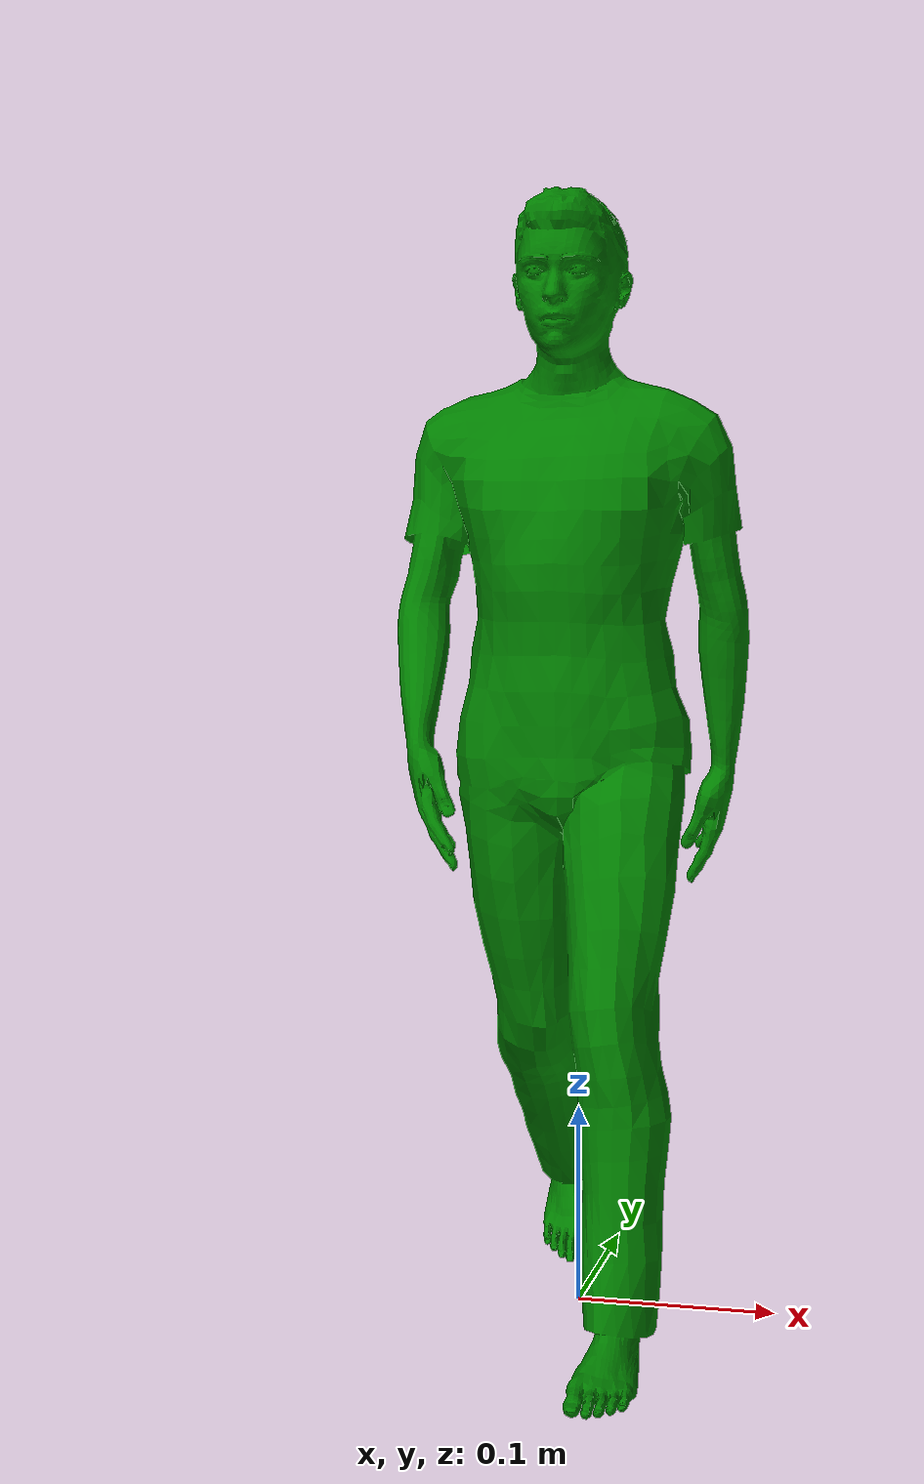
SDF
<?xml version='1.0'?>
<sdf version='1.6'>
  <model name='person_walking'>
    <link name='link'>
      <inertial>
        <pose frame=''>0 0 0.95 0 -0 0</pose>
        <mass>80</mass>
        <inertia>
          <ixx>27.82</ixx>
          <ixy>0</ixy>
          <ixz>0</ixz>
          <iyy>24.88</iyy>
          <iyz>0</iyz>
          <izz>4.57</izz>
        </inertia>
      </inertial>
      <self_collide>0</self_collide>
      <enable_wind>0</enable_wind>
      <kinematic>0</kinematic>
      <pose frame=''>0 0 0 0 -0 0</pose>
      <gravity>1</gravity>
      <visual name='visual'>
        <pose frame=''>0 0 -0.02 0 -0 0</pose>
        <geometry>
          <mesh>
            <uri>model://person_walking/meshes/walking.dae</uri>
            <scale>0.3 0.3 0.3</scale>
          </mesh>
        </geometry>
        <transparency>0</transparency>
        <cast_shadows>1</cast_shadows>
        <material>
          <shader type='vertex'>
            <normal_map>__default__</normal_map>
          </shader>
          <script>
            <name>ModelPreview_4::link::visual_MATERIAL_</name>
            <uri>__default__</uri>
          </script>
          <ambient>0.4 0.4 0.4 1</ambient>
          <diffuse>0 0.5 0 1</diffuse>
          <specular>0 0.5 0 1</specular>
          <emissive>0 0.5 0 1</emissive>
        </material>
      </visual>
      <collision name='bottom'>
        <laser_retro>0</laser_retro>
        <max_contacts>10</max_contacts>
        <pose frame=''>0 0 0.01 0 -0 0</pose>
        <geometry>
          <box>
            <size>0.35 0.75 0.02</size>
          </box>
        </geometry>
        <surface>
          <friction>
            <ode>
              <mu>1</mu>
              <mu2>1</mu2>
              <fdir1>0 0 0</fdir1>
              <slip1>0</slip1>
              <slip2>0</slip2>
            </ode>
            <torsional>
              <coefficient>1</coefficient>
              <patch_radius>0</patch_radius>
              <surface_radius>0</surface_radius>
              <use_patch_radius>1</use_patch_radius>
              <ode>
                <slip>0</slip>
              </ode>
            </torsional>
          </friction>
          <bounce>
            <restitution_coefficient>0</restitution_coefficient>
            <threshold>1e+06</threshold>
          </bounce>
          <contact>
            <collide_without_contact>0</collide_without_contact>
            <collide_without_contact_bitmask>1</collide_without_contact_bitmask>
            <collide_bitmask>1</collide_bitmask>
            <ode>
              <soft_cfm>0</soft_cfm>
              <soft_erp>0.2</soft_erp>
              <kp>1e+13</kp>
              <kd>1</kd>
              <max_vel>0.01</max_vel>
              <min_depth>0</min_depth>
            </ode>
            <bullet>
              <split_impulse>1</split_impulse>
              <split_impulse_penetration_threshold>-0.01</split_impulse_penetration_threshold>
              <soft_cfm>0</soft_cfm>
              <soft_erp>0.2</soft_erp>
              <kp>1e+13</kp>
              <kd>1</kd>
            </bullet>
          </contact>
        </surface>
      </collision>
      <collision name='person'>
        <laser_retro>0</laser_retro>
        <max_contacts>10</max_contacts>
        <pose frame=''>0 0 -0.02 0 -0 0</pose>
        <geometry>
          <mesh>
            <uri>/home/mariemadel/.gazebo/models/person_walking/meshes/walking.dae</uri>
            <scale>1 1 1</scale>
          </mesh>
        </geometry>
        <surface>
          <friction>
            <ode>
              <mu>1</mu>
              <mu2>1</mu2>
              <fdir1>0 0 0</fdir1>
              <slip1>0</slip1>
              <slip2>0</slip2>
            </ode>
            <torsional>
              <coefficient>1</coefficient>
              <patch_radius>0</patch_radius>
              <surface_radius>0</surface_radius>
              <use_patch_radius>1</use_patch_radius>
              <ode>
                <slip>0</slip>
              </ode>
            </torsional>
          </friction>
          <bounce>
            <restitution_coefficient>0</restitution_coefficient>
            <threshold>1e+06</threshold>
          </bounce>
          <contact>
            <collide_without_contact>0</collide_without_contact>
            <collide_without_contact_bitmask>1</collide_without_contact_bitmask>
            <collide_bitmask>1</collide_bitmask>
            <ode>
              <soft_cfm>0</soft_cfm>
              <soft_erp>0.2</soft_erp>
              <kp>1e+13</kp>
              <kd>1</kd>
              <max_vel>0.01</max_vel>
              <min_depth>0</min_depth>
            </ode>
            <bullet>
              <split_impulse>1</split_impulse>
              <split_impulse_penetration_threshold>-0.01</split_impulse_penetration_threshold>
              <soft_cfm>0</soft_cfm>
              <soft_erp>0.2</soft_erp>
              <kp>1e+13</kp>
              <kd>1</kd>
            </bullet>
          </contact>
        </surface>
      </collision>
    </link>
    <static>0</static>
    <allow_auto_disable>1</allow_auto_disable>
  </model>
</sdf>
